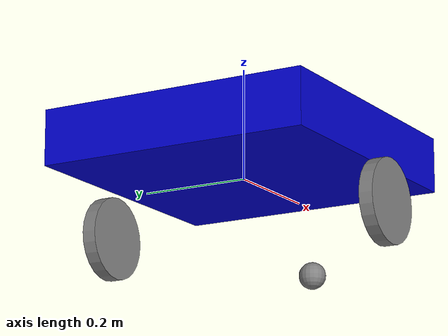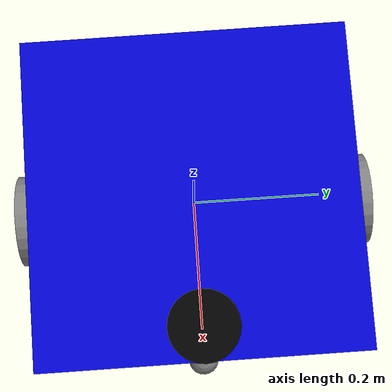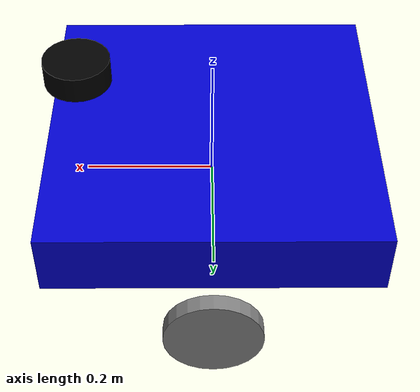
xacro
<?xml version="1.0"?>
<robot xmlns:xacro="http://www.ros.org/wiki/xacro" name="reference_robot">

    <xacro:arg name="use_mock_hardware" default="true"/>
    <xacro:property name="use_mock_hardware" value="$(arg use_mock_hardware)"/>

    <xacro:include filename="$(find robot_bringup)/urdf/robot_properties.xacro"/>
    <xacro:include filename="$(find robot_bringup)/urdf/robot_links.xacro"/>
    <xacro:include filename="$(find robot_bringup)/urdf/robot_joints.xacro"/>
    <xacro:include filename="$(find robot_bringup)/urdf/ros2_control.xacro"/>
    <xacro:include filename="$(find robot_bringup)/urdf/lidar.xacro"/>

</robot>

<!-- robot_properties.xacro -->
<robot xmlns:xacro="http://www.ros.org/wiki/xacro" name="reference_robot">

    <xacro:property name="wheel_radius"     value="0.075" />
    <xacro:property name="wheel_length"     value="0.025" />
    <xacro:property name="wheel_separation" value="0.55" />

    <xacro:property name="chassis_length" value="0.5" />
    <xacro:property name="chassis_width"  value="0.5" />
    <xacro:property name="chassis_height" value="0.10" />

    <xacro:property name="chassis_mass" value="2.0" />
    <xacro:property name="wheel_mass"   value="0.5" />

    <xacro:property name="M_PI" value="3.14159265359"/>
    <xacro:property name="DEG_TO_RAD" value="${M_PI / 180.0}"/>

    <material name="blue">
        <color rgba="0 0 0.8 1"/>
    </material>

    <material name="grey">
        <color rgba="0.5 0.5 0.5 1"/>
    </material>

    <material name="black">
        <color rgba="0 0 0 1"/>
    </material>

    <xacro:macro name="box_inertia" params="m l w h">
        <inertial>
            <origin xyz="0 0 0" rpy="0 0 0"/>
            <mass value="${m}"/>
            <inertia ixx="${(m/12) * (h*h + w*w)}" ixy="0.0" ixz="0.0"
                     iyy="${(m/12) * (h*h + l*l)}" iyz="0.0"
                     izz="${(m/12) * (l*l + w*w)}"/>
        </inertial>
    </xacro:macro>

    <xacro:macro name="cylinder_inertia" params="m r h">
        <inertial>
            <origin xyz="0 0 0" rpy="0 0 0"/>
            <mass value="${m}"/>
            <inertia ixx="${(m/12) * (3*r*r + h*h)}" ixy="0" ixz="0"
                     iyy="${(m/12) * (3*r*r + h*h)}" iyz="0"
                     izz="${(m/2) * (r*r)}"/>
        </inertial>
    </xacro:macro>

    <xacro:macro name="sphere_inertia" params="m r">
        <inertial>
            <origin xyz="0 0 0" rpy="0 0 0"/>
            <mass value="${m}"/>
            <inertia ixx="${(2.0/5.0) * m * (r*r)}" ixy="0.0" ixz="0.0"
                     iyy="${(2.0/5.0) * m * (r*r)}" iyz="0.0"
                     izz="${(2.0/5.0) * m * (r*r)}"/>
        </inertial>
    </xacro:macro>

</robot>

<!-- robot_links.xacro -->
<robot xmlns:xacro="http://www.ros.org/wiki/xacro">

  <link name="base_link">
    <visual>
      <origin xyz="0 0 0.05" rpy="0 0 0"/>
      <geometry>
        <box size="${chassis_length} ${chassis_width} ${chassis_height}"/>
      </geometry>
      <material name="blue"/>
    </visual>
    <collision>
      <origin xyz="0 0 0.05" rpy="0 0 0"/>
      <geometry>
        <box size="${chassis_length} ${chassis_width} ${chassis_height}"/>
      </geometry>
    </collision>
    <xacro:box_inertia m="${chassis_mass}" l="${chassis_length}" w="${chassis_width}" h="${chassis_height}"/>
  </link>

  <link name="right_wheel_link">
    <visual>
      <geometry>
        <cylinder radius="${wheel_radius}" length="${wheel_length}"/>
      </geometry>
      <material name="grey"/>
    </visual>
    <collision>
      <geometry>
        <cylinder radius="${wheel_radius}" length="${wheel_length}"/>
      </geometry>
    </collision>
    <xacro:cylinder_inertia m="${wheel_mass}" r="${wheel_radius}" h="${wheel_length}"/>
  </link>

  <link name="left_wheel_link">
    <visual>
      <geometry>
        <cylinder radius="${wheel_radius}" length="${wheel_length}"/>
      </geometry>
      <material name="grey"/>
    </visual>
    <collision>
      <geometry>
        <cylinder radius="${wheel_radius}" length="${wheel_length}"/>
      </geometry>
    </collision>
    <xacro:cylinder_inertia m="${wheel_mass}" r="${wheel_radius}" h="${wheel_length}"/>
  </link>

  <link name="castor_wheel_link">
    <visual>
      <geometry>
        <sphere radius="0.025"/>
      </geometry>
      <material name="grey"/>
    </visual>
    <collision>
      <geometry>
        <sphere radius="0.025"/>
      </geometry>
    </collision>
    <xacro:sphere_inertia m="${wheel_mass}" r="0.025"/>
  </link>

</robot>

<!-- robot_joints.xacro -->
<robot xmlns:xacro="http://www.ros.org/wiki/xacro">

    <joint name="left_wheel_joint" type="continuous">
        <parent link="base_link"/>
        <child link="left_wheel_link"/>
        <origin xyz="0 0.275 -0.075" rpy="1.5707963 0 0"/>
        <axis xyz="0 0 -1"/>
        <limit effort="10" velocity="44.0"/>
    </joint>

    <joint name="right_wheel_joint" type="continuous">
        <parent link="base_link"/>
        <child link="right_wheel_link"/>
        <origin xyz="0 -0.275 -0.075" rpy="1.5707963 0 0"/>
        <axis xyz="0 0 -1"/>
        <limit effort="10" velocity="44.0"/>
    </joint>

    <joint name="castor_joint" type="fixed">
        <parent link="base_link"/>
        <child link="castor_wheel_link"/>
        <origin xyz="0.25 0 -0.125" rpy="0 0 0"/>
    </joint>

</robot>

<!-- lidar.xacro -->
<!--
  Lidar frame for the reference base.

  Defines lidar_link, the fixed lidar_joint, and a Gazebo Fortress gpu_lidar
  sensor on that link. Nothing publishes /scan without a simulator.
-->
<robot xmlns:xacro="http://www.ros.org/wiki/xacro">

    <link name="lidar_link">
        <visual>
            <origin xyz="0 0 0" rpy="0 0 0"/>
            <geometry>
                <cylinder radius="0.05" length="0.04"/>
            </geometry>
            <material name="black"/>
        </visual>
        <collision>
            <origin xyz="0 0 0" rpy="0 0 0"/>
            <geometry>
                <cylinder radius="0.05" length="0.04"/>
            </geometry>
        </collision>
        <inertial>
            <mass value="0.1"/>
            <inertia ixx="0.0001" ixy="0" ixz="0" iyy="0.0001" iyz="0" izz="0.0001"/>
        </inertial>
    </link>

    <joint name="lidar_joint" type="fixed">
        <parent link="base_link"/>
        <child link="lidar_link"/>
        <origin xyz="0.20 0 0.20" rpy="0 0 0"/>
    </joint>

    <gazebo reference="lidar_link">
        <sensor name="lidar" type="gpu_lidar">
            <topic>scan</topic>
            <update_rate>10</update_rate>
            <always_on>true</always_on>
            <visualize>true</visualize>
            <gz_frame_id>lidar_link</gz_frame_id>
            <lidar>
                <scan>
                    <horizontal>
                        <samples>360</samples>
                        <resolution>1</resolution>
                        <min_angle>-3.14159</min_angle>
                        <max_angle>3.14159</max_angle>
                    </horizontal>
                </scan>
                <range>
                    <min>0.15</min>
                    <max>20.0</max>
                    <resolution>0.01</resolution>
                </range>
            </lidar>
        </sensor>
    </gazebo>

</robot>
